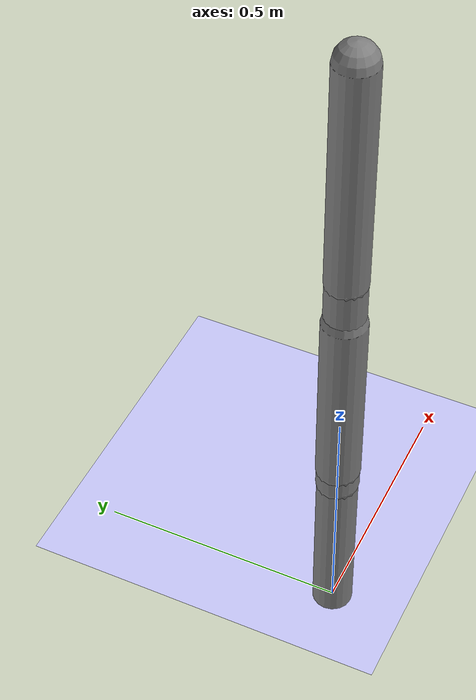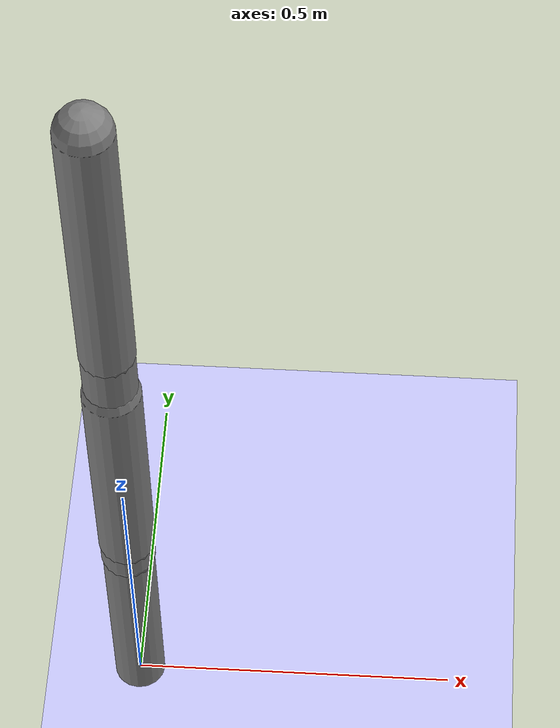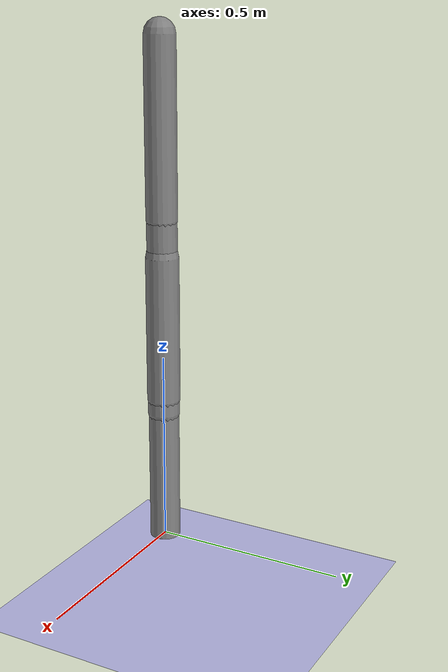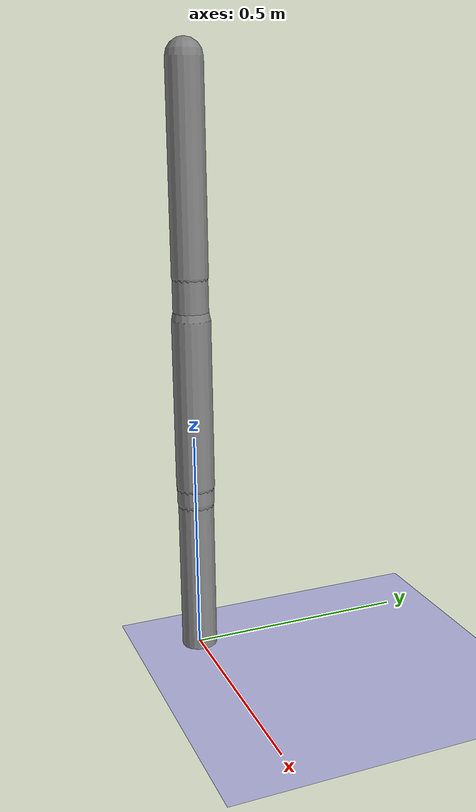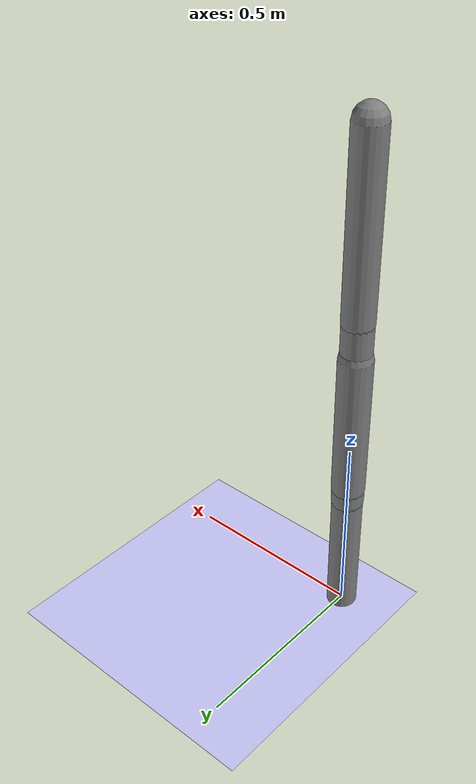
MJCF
<?xml version='1.0' encoding='UTF-8'?>
<mujoco model="robot_model">
  <worldbody>
    <light name="light" pos="0 -3 10" dir="0 0.5 -1" diffuse=".8 .8 .8" specular="0.1 0.1 0.1"/>
    <geom name="floor" type="plane" size="10.0 10.0 0.1" pos="0 0 0" rgba="0.8 0.8 1 1" contype="2" conaffinity="1"/>
    <body name="limb0" pos="0 0 0">
      <geom type="capsule" fromto="0 0 0 0 0 0.5591992442101426" size="0.04" density="1006.992780612291" contype="1" conaffinity="2"/>
      <site type="sphere" size="0.01" name="limb0_site0" pos="0 0 0.3226063180096684"/>
      <freejoint name="limb0_root"/>
      <body name="limb1" pos="0 0 0.3226063180096684">
        <geom type="capsule" fromto="0 0 0 0 0 0.10530788511113108" size="0.029941194438966888" density="833.8038593794446" contype="1" conaffinity="2"/>
        <site type="sphere" size="0.01" name="limb1_site0" pos="0 0 0.06570188248096143"/>
        <site type="sphere" size="0.01" name="limb1_site1" pos="0 0 0.027660887525718027"/>
        <site type="sphere" size="0.01" name="limb1_site2" pos="0 0 0.10116558743784289"/>
        <body name="limb2" pos="0 0 0.06570188248096143">
          <geom type="capsule" fromto="0 0 0 0 0 0.38231057733543733" size="0.04320126958942399" density="764.0354914470512" contype="1" conaffinity="2"/>
          <joint name="joint_limb1_limb2_0" type="hinge" axis="0 1 0" range="-79.19027832141104 79.19027832141104" damping="5.0"/>
        </body>
        <body name="limb3" pos="0 0 0.027660887525718027">
          <geom type="capsule" fromto="0 0 0 0 0 0.3449366956007403" size="0.04182995516077146" density="888.638751137447" contype="1" conaffinity="2"/>
          <site type="sphere" size="0.01" name="limb3_site0" pos="0 0 0.34476469369601037"/>
          <body name="limb4" pos="0 0 0.34476469369601037">
            <geom type="capsule" fromto="0 0 0 0 0 0.43759584017527964" size="0.03523291040596619" density="820.7923175021591" contype="1" conaffinity="2"/>
            <joint name="joint_limb3_limb4_0" type="hinge" axis="0 1 0" range="-97.60316524447805 97.60316524447805" damping="5.0"/>
          </body>
          <joint name="joint_limb1_limb3_0" type="hinge" axis="1 0 0" range="-76.57739072162552 76.57739072162552" damping="5.0"/>
        </body>
        <body name="limb5" pos="0 0 0.10116558743784289">
          <geom type="capsule" fromto="0 0 0 0 0 0.5" size="0.03926549675410116" density="1058.8769662480563" contype="1" conaffinity="2"/>
          <site type="sphere" size="0.01" name="limb5_site0" pos="0 0 0.2560745598104502"/>
          <site type="sphere" size="0.01" name="limb5_site1" pos="0 0 0.44076882258336086"/>
          <body name="limb6" pos="0 0 0.2560745598104502">
            <geom type="capsule" fromto="0 0 0 0 0 0.10132629865508748" size="0.028272016099352537" density="685.6739189435759" contype="1" conaffinity="2"/>
            <joint name="joint_limb5_limb6_0" type="hinge" axis="1 0 0" range="-39.46093477322345 39.46093477322345" damping="5.0"/>
          </body>
          <body name="limb7" pos="0 0 0.44076882258336086">
            <geom type="capsule" fromto="0 0 0 0 0 0.4558236432736898" size="0.040393786555888975" density="1054.6511241400187" contype="1" conaffinity="2"/>
            <joint name="joint_limb5_limb7_0" type="hinge" axis="1 0 0" range="-119.76467892017766 119.76467892017766" damping="5.0"/>
          </body>
          <joint name="joint_limb1_limb5_0" type="hinge" axis="0 1 0" range="-100.19138469108644 100.19138469108644" damping="5.0"/>
        </body>
        <joint name="joint_limb0_limb1_0" type="hinge" axis="0 1 0" range="-118.43465417951464 118.43465417951464" damping="5.0"/>
      </body>
    </body>
  </worldbody>
  <actuator>
    <position name="position_actuator_joint_limb0_limb1_0" joint="joint_limb0_limb1_0" gear="1.3172310151340172" inheritrange="1" kp="10.0"/>
    <position name="position_actuator_joint_limb1_limb2_0" joint="joint_limb1_limb2_0" gear="1.0104857860709995" inheritrange="1" kp="10.0"/>
    <position name="position_actuator_joint_limb1_limb3_0" joint="joint_limb1_limb3_0" gear="1.9786544527946286" inheritrange="1" kp="10.0"/>
    <position name="position_actuator_joint_limb3_limb4_0" joint="joint_limb3_limb4_0" gear="1.7459471619076385" inheritrange="1" kp="10.0"/>
    <position name="position_actuator_joint_limb1_limb5_0" joint="joint_limb1_limb5_0" gear="1.233825117296027" inheritrange="1" kp="10.0"/>
    <position name="position_actuator_joint_limb5_limb6_0" joint="joint_limb5_limb6_0" gear="1.6699171564828723" inheritrange="1" kp="10.0"/>
    <position name="position_actuator_joint_limb5_limb7_0" joint="joint_limb5_limb7_0" gear="1.6376170216743322" inheritrange="1" kp="10.0"/>
  </actuator>
</mujoco>
